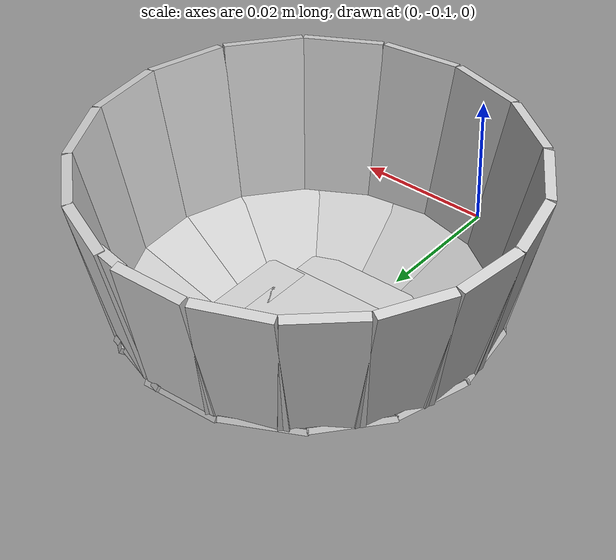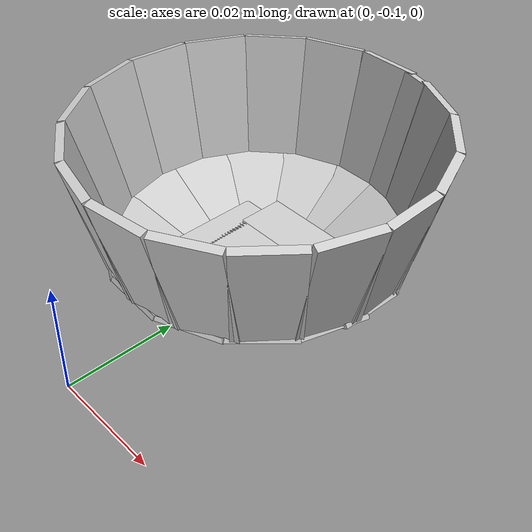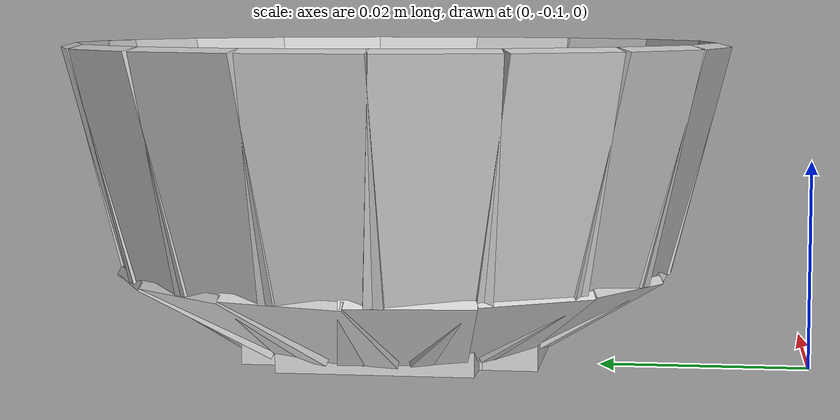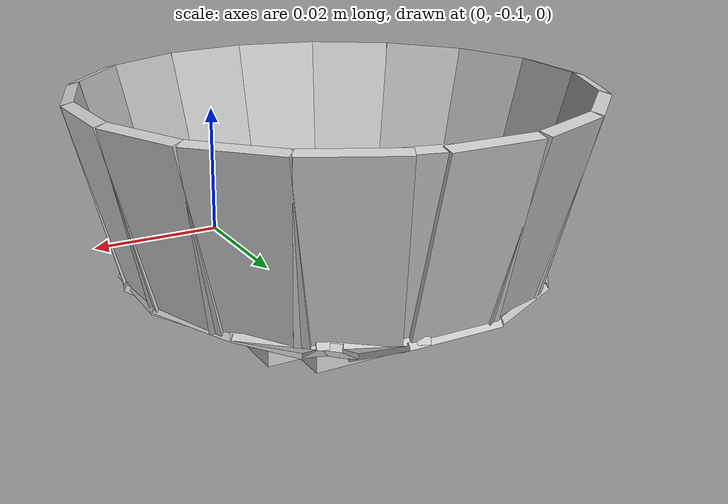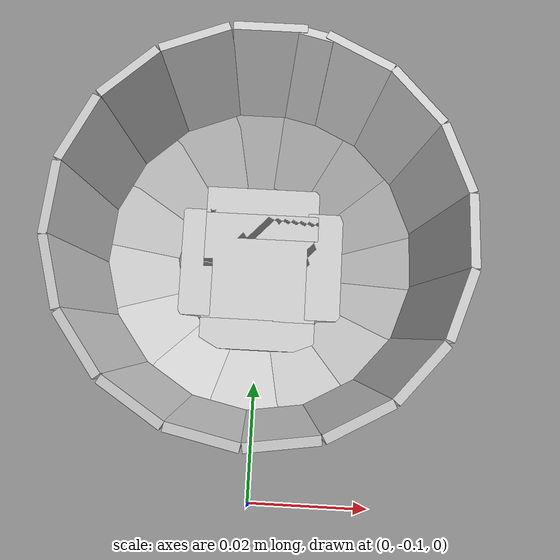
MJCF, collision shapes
<?xml version='1.0' encoding='utf-8'?>
<mujoco model="small_akita_red_bowl">
  <asset>
    <texture file="red_texture.png" name="tex-akita_red_bowl" type="2d" />
    <material name="akita_red_bowl" reflectance="0.5" texrepeat="1 1" texture="tex-akita_red_bowl" texuniform="false" />
    <mesh file="visual/akita_bowl_vis.msh" name="akita_bowl_vis" scale="0.42 0.42 0.42" />
  </asset>
  <worldbody>
    <body>
      <body name="object" pos="0.0 -0.06 0.0">
        <geom solimp="0.998 0.998 0.001" solref="0.001 1" density="100" friction="0.95 0.3 0.1" type="mesh" mesh="akita_bowl_vis" conaffinity="0" contype="0" group="1" material="akita_red_bowl" />
        <geom solimp="0.998 0.998 0.001" solref="0.001 1" density="100" friction="0.95 0.3 0.1" type="box" pos="-6e-05 0.020166 0.005634" quat="0.60990 -0.35780 -0.35780 -0.60990" size="0.000426 0.005952 0.007122" group="0" rgba="0.8 0.8 0.8 0.3" />
        <geom solimp="0.998 0.998 0.001" solref="0.001 1" density="100" friction="0.95 0.3 0.1" type="box" pos="-0.008813999999999999 0.018102 0.005754" quat="0.45959 -0.42672 0.26704 0.73169" size="0.000426 0.005952 0.007122" group="0" rgba="0.8 0.8 0.8 0.3" />
        <geom solimp="0.998 0.998 0.001" solref="0.001 1" density="100" friction="0.95 0.3 0.1" type="box" pos="-0.015629999999999998 0.012648000000000001 0.00585" quat="0.29172 -0.47299 0.16619 0.81459" size="0.000426 0.005952 0.007122" group="0" rgba="0.8 0.8 0.8 0.3" />
        <geom solimp="0.998 0.998 0.001" solref="0.001 1" density="100" friction="0.95 0.3 0.1" type="box" pos="-0.019518 0.004757999999999999 0.0059039999999999995" quat="0.10855 -0.49698 0.05658 0.85908" size="0.000426 0.005952 0.007122" group="0" rgba="0.8 0.8 0.8 0.3" />
        <geom solimp="0.998 0.998 0.001" solref="0.001 1" density="100" friction="0.95 0.3 0.1" type="box" pos="-0.019722 -0.0038099999999999996 0.0059039999999999995" quat="0.49761 -0.07722 0.86246 0.05074" size="0.000426 0.005952 0.007122" group="0" rgba="0.8 0.8 0.8 0.3" />
        <geom solimp="0.998 0.998 0.001" solref="0.001 1" density="100" friction="0.95 0.3 0.1" type="box" pos="-0.016152 -0.011940000000000001 0.0059039999999999995" quat="0.47408 -0.26597 0.82406 0.15949" size="0.000426 0.005952 0.007122" group="0" rgba="0.8 0.8 0.8 0.3" />
        <geom solimp="0.998 0.998 0.001" solref="0.001 1" density="100" friction="0.95 0.3 0.1" type="box" pos="-0.009342 -0.017783999999999998 0.0059039999999999995" quat="0.42646 -0.44336 0.74380 0.26138" size="0.000426 0.005952 0.007122" group="0" rgba="0.8 0.8 0.8 0.3" />
        <geom solimp="0.998 0.998 0.001" solref="0.001 1" density="100" friction="0.95 0.3 0.1" type="box" pos="-0.000726 -0.020075999999999997 0.0059039999999999995" quat="0.59728 0.35787 0.34946 -0.62695" size="0.000426 0.005952 0.007122" group="0" rgba="0.8 0.8 0.8 0.3" />
        <geom solimp="0.998 0.998 0.001" solref="0.001 1" density="100" friction="0.95 0.3 0.1" type="box" pos="0.008105999999999999 -0.018378 0.0059039999999999995" quat="0.72249 0.27055 0.42070 -0.47731" size="0.000426 0.005952 0.007122" group="0" rgba="0.8 0.8 0.8 0.3" />
        <geom solimp="0.998 0.998 0.001" solref="0.001 1" density="100" friction="0.95 0.3 0.1" type="box" pos="0.015137999999999999 -0.013205999999999999 0.0059039999999999995" quat="0.17267 -0.80894 0.30891 0.46945" size="0.000426 0.005952 0.007122" group="0" rgba="0.8 0.8 0.8 0.3" />
        <geom solimp="0.998 0.998 0.001" solref="0.001 1" density="100" friction="0.95 0.3 0.1" type="box" pos="0.019332 -0.0054600000000000004 0.0059039999999999995" quat="0.85700 0.06550 0.49588 -0.12397" size="0.000426 0.005952 0.007122" group="0" rgba="0.8 0.8 0.8 0.3" />
        <geom solimp="0.998 0.998 0.001" solref="0.001 1" density="100" friction="0.95 0.3 0.1" type="box" pos="0.019332 -0.0054600000000000004 0.0059039999999999995" quat="0.85700 0.06550 0.49588 -0.12397" size="0.000426 0.005952 0.007122" group="0" rgba="0.8 0.8 0.8 0.3" />
        <geom solimp="0.998 0.998 0.001" solref="0.001 1" density="100" friction="0.95 0.3 0.1" type="box" pos="0.020088 0.000132 0.0059039999999999995" quat="0.86591 -0.00473 0.50017 -0.00248" size="0.000426 0.005952 0.007122" group="0" rgba="0.8 0.8 0.8 0.3" />
        <geom solimp="0.998 0.998 0.001" solref="0.001 1" density="100" friction="0.95 0.3 0.1" type="box" pos="0.018216 0.008466 0.0059039999999999995" quat="0.84663 -0.11101 0.48771 0.18175" size="0.000426 0.005952 0.007122" group="0" rgba="0.8 0.8 0.8 0.3" />
        <geom solimp="0.998 0.998 0.001" solref="0.001 1" density="100" friction="0.95 0.3 0.1" type="box" pos="0.012936 0.015372 0.0059039999999999995" quat="0.21392 0.78724 0.36065 -0.45213" size="0.000426 0.005952 0.007122" group="0" rgba="0.8 0.8 0.8 0.3" />
        <geom solimp="0.998 0.998 0.001" solref="0.001 1" density="100" friction="0.95 0.3 0.1" type="box" pos="0.006942 0.018851999999999997 0.0059039999999999995" quat="0.71324 -0.28870 0.40847 0.49101" size="0.000426 0.005952 0.007122" group="0" rgba="0.8 0.8 0.8 0.3" />
        <geom solimp="0.998 0.998 0.001" solref="0.001 1" density="100" friction="0.95 0.3 0.1" type="box" pos="-6e-05 0.028272 0.020201999999999998" quat="0.09041 0.70130 0.70130 -0.09041" size="0.000768 0.005604 0.01125" group="0" rgba="0.8 0.8 0.8 0.3" />
        <geom solimp="0.998 0.998 0.001" solref="0.001 1" density="100" friction="0.95 0.3 0.1" type="box" pos="-0.010343999999999999 0.02631 0.020201999999999998" quat="0.10558 0.55930 0.81905 -0.07209" size="0.000768 0.005604 0.01125" group="0" rgba="0.8 0.8 0.8 0.3" />
        <geom solimp="0.998 0.998 0.001" solref="0.001 1" density="100" friction="0.95 0.3 0.1" type="box" pos="-0.019044 0.020898 0.020201999999999998" quat="0.11689 0.40164 0.90683 -0.05176" size="0.000768 0.005604 0.01125" group="0" rgba="0.8 0.8 0.8 0.3" />
        <geom solimp="0.998 0.998 0.001" solref="0.001 1" density="100" friction="0.95 0.3 0.1" type="box" pos="-0.025283999999999997 0.012648000000000001 0.020201999999999998" quat="0.22890 -0.12439 0.02951 0.96502" size="0.000768 0.005604 0.01125" group="0" rgba="0.8 0.8 0.8 0.3" />
        <geom solimp="0.998 0.998 0.001" solref="0.001 1" density="100" friction="0.95 0.3 0.1" type="box" pos="-0.028134 0.00276 0.020201999999999998" quat="0.12768 0.04949 0.99056 -0.00638" size="0.000768 0.005604 0.01125" group="0" rgba="0.8 0.8 0.8 0.3" />
        <geom solimp="0.998 0.998 0.001" solref="0.001 1" density="100" friction="0.95 0.3 0.1" type="box" pos="-0.02733 -0.0072239999999999995 0.020201999999999998" quat="0.12679 0.12680 0.01635 -0.98366" size="0.000768 0.005604 0.01125" group="0" rgba="0.8 0.8 0.8 0.3" />
        <geom solimp="0.998 0.998 0.001" solref="0.001 1" density="100" friction="0.95 0.3 0.1" type="box" pos="-0.022949999999999998 -0.016506 0.020201999999999998" quat="0.12173 -0.30325 0.94430 0.03909" size="0.000768 0.005604 0.01125" group="0" rgba="0.8 0.8 0.8 0.3" />
        <geom solimp="0.998 0.998 0.001" solref="0.001 1" density="100" friction="0.95 0.3 0.1" type="box" pos="-0.015456000000000001 -0.023676 0.020201999999999998" quat="0.11249 -0.47128 0.87267 0.06075" size="0.000768 0.005604 0.01125" group="0" rgba="0.8 0.8 0.8 0.3" />
        <geom solimp="0.998 0.998 0.001" solref="0.001 1" density="100" friction="0.95 0.3 0.1" type="box" pos="-0.006059999999999999 -0.027611999999999998 0.020201999999999998" quat="0.62080 0.09971 0.08003 -0.77348" size="0.000768 0.005604 0.01125" group="0" rgba="0.8 0.8 0.8 0.3" />
        <geom solimp="0.998 0.998 0.001" solref="0.001 1" density="100" friction="0.95 0.3 0.1" type="box" pos="0.004188 -0.027960000000000002 0.020201999999999998" quat="0.75082 0.08352 0.09678 -0.64802" size="0.000768 0.005604 0.01125" group="0" rgba="0.8 0.8 0.8 0.3" />
        <geom solimp="0.998 0.998 0.001" solref="0.001 1" density="100" friction="0.95 0.3 0.1" type="box" pos="0.013949999999999999 -0.024588000000000002 0.020201999999999998" quat="0.06445 -0.85651 0.50004 0.11041" size="0.000768 0.005604 0.01125" group="0" rgba="0.8 0.8 0.8 0.3" />
        <geom solimp="0.998 0.998 0.001" solref="0.001 1" density="100" friction="0.95 0.3 0.1" type="box" pos="0.021786 -0.018018 0.020201999999999998" quat="0.93283 0.04342 0.12024 -0.33687" size="0.000768 0.005604 0.01125" group="0" rgba="0.8 0.8 0.8 0.3" />
        <geom solimp="0.998 0.998 0.001" solref="0.001 1" density="100" friction="0.95 0.3 0.1" type="box" pos="0.02685 -0.008849999999999998 0.020201999999999998" quat="0.02040 -0.97909 0.15826 0.12620" size="0.000768 0.005604 0.01125" group="0" rgba="0.8 0.8 0.8 0.3" />
        <geom solimp="0.998 0.998 0.001" solref="0.001 1" density="100" friction="0.95 0.3 0.1" type="box" pos="0.028247999999999995 0.00111 0.020201999999999998" quat="0.00238 0.99162 0.01844 -0.12782" size="0.000768 0.005604 0.01125" group="0" rgba="0.8 0.8 0.8 0.3" />
        <geom solimp="0.998 0.998 0.001" solref="0.001 1" density="100" friction="0.95 0.3 0.1" type="box" pos="0.028247999999999995 0.00111 0.020201999999999998" quat="0.00238 0.99162 0.01844 -0.12782" size="0.000768 0.005604 0.01125" group="0" rgba="0.8 0.8 0.8 0.3" />
        <geom solimp="0.998 0.998 0.001" solref="0.001 1" density="100" friction="0.95 0.3 0.1" type="box" pos="0.026045999999999996 0.010992 0.020201999999999998" quat="0.02524 0.97229 0.19574 -0.12533" size="0.000768 0.005604 0.01125" group="0" rgba="0.8 0.8 0.8 0.3" />
        <geom solimp="0.998 0.998 0.001" solref="0.001 1" density="100" friction="0.95 0.3 0.1" type="box" pos="0.020496 0.019469999999999998 0.020201999999999998" quat="0.04729 0.92146 0.36683 -0.11878" size="0.000768 0.005604 0.01125" group="0" rgba="0.8 0.8 0.8 0.3" />
        <geom solimp="0.998 0.998 0.001" solref="0.001 1" density="100" friction="0.95 0.3 0.1" type="box" pos="0.012402 0.025404 0.020201999999999998" quat="0.06760 0.84175 0.52452 -0.10850" size="0.000768 0.005604 0.01125" group="0" rgba="0.8 0.8 0.8 0.3" />
        <geom solimp="0.998 0.998 0.001" solref="0.001 1" density="100" friction="0.95 0.3 0.1" type="box" pos="0.006336 0.027552 0.020201999999999998" quat="0.07953 0.77656 0.61693 -0.10010" size="0.00075 0.002664 0.011232" group="0" rgba="0.8 0.8 0.8 0.3" />
        <geom solimp="0.998 0.998 0.001" solref="0.001 1" density="100" friction="0.95 0.3 0.1" type="box" pos="-0.0 -0.00045 0.002502" quat="0.70711 0.00000 0.70711 0.00000" size="0.001548 0.009281999999999999 0.009702" group="0" rgba="0.8 0.8 0.8 0.3" />
        <geom solimp="0.998 0.998 0.001" solref="0.001 1" density="100" friction="0.95 0.3 0.1" type="box" pos="-0.0 -0.012126 0.002502" quat="0.70711 0.00000 0.70711 0.00000" size="0.001548 0.0025859999999999998 0.009702" group="0" rgba="0.8 0.8 0.8 0.3" />
        <geom solimp="0.998 0.998 0.001" solref="0.001 1" density="100" friction="0.95 0.3 0.1" type="box" pos="0.010926 9.6e-05 0.002502" quat="0.50000 -0.50000 0.50000 0.50000" size="0.001548 0.00297 0.009281999999999999" group="0" rgba="0.8 0.8 0.8 0.3" />
        <geom solimp="0.998 0.998 0.001" solref="0.001 1" density="100" friction="0.95 0.3 0.1" type="box" pos="-0.01086 2.4e-05 0.002502" quat="0.50000 -0.50000 0.50000 0.50000" size="0.001548 0.002718 0.009281999999999999" group="0" rgba="0.8 0.8 0.8 0.3" />
        <geom solimp="0.998 0.998 0.001" solref="0.001 1" density="100" friction="0.95 0.3 0.1" type="box" pos="-0.0 0.00894 0.002502" quat="0.00000 0.70711 0.00000 -0.70711" size="0.001548 0.004445999999999999 0.009702" group="0" rgba="0.8 0.8 0.8 0.3" />
      </body>
      <site rgba="0 0 0 0" size="0.003" pos="0.0 0.0 -0.036" name="bottom_site" />
      <site rgba="0 0 0 0" size="0.003" pos="0.0 0.0 0.024" name="top_site" />
      <site rgba="0 0 0 0" size="0.003" pos="0.015 0.015 0.0" name="horizontal_radius_site" />
    </body>
  </worldbody>
</mujoco>
